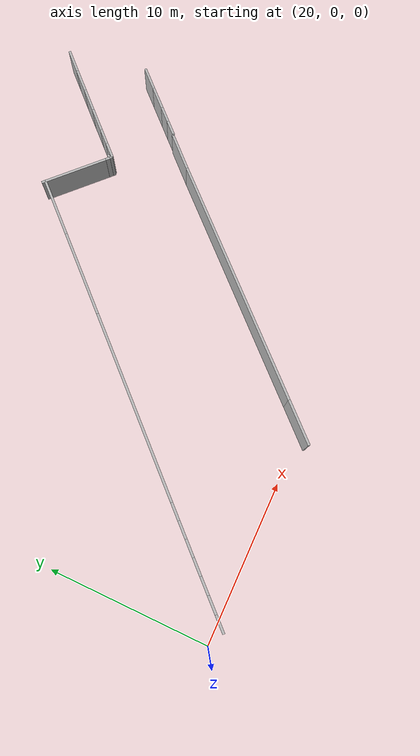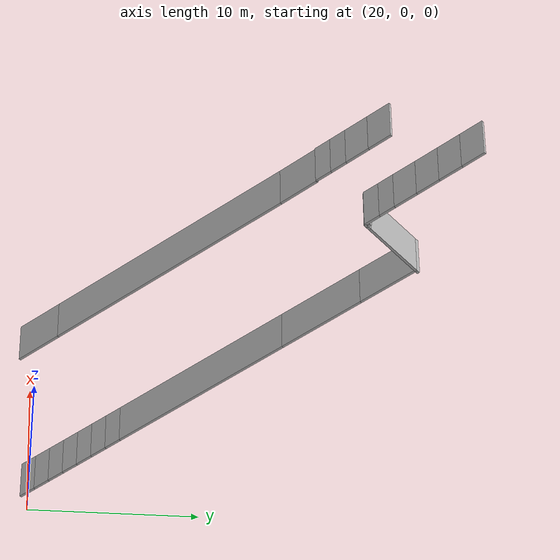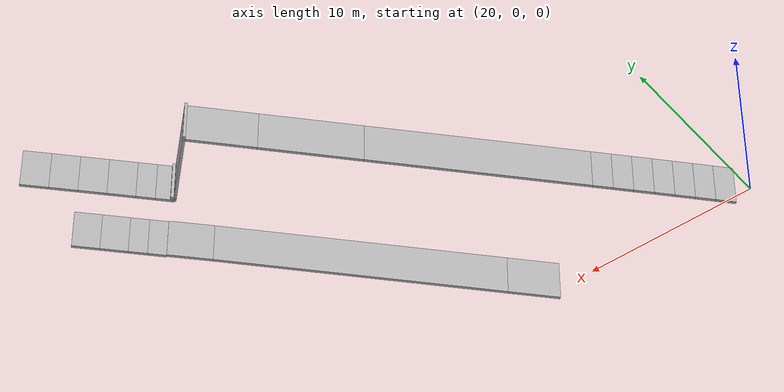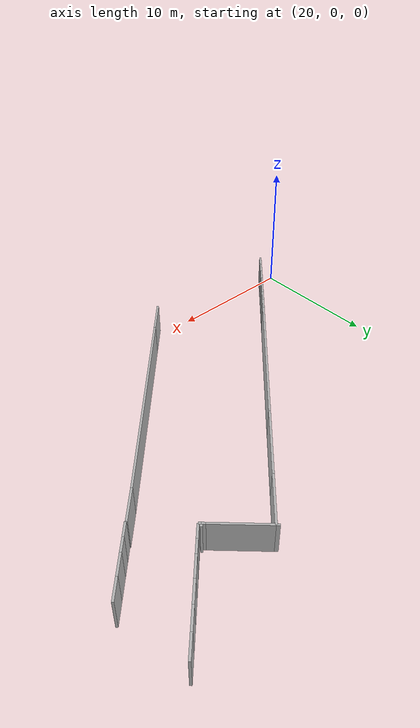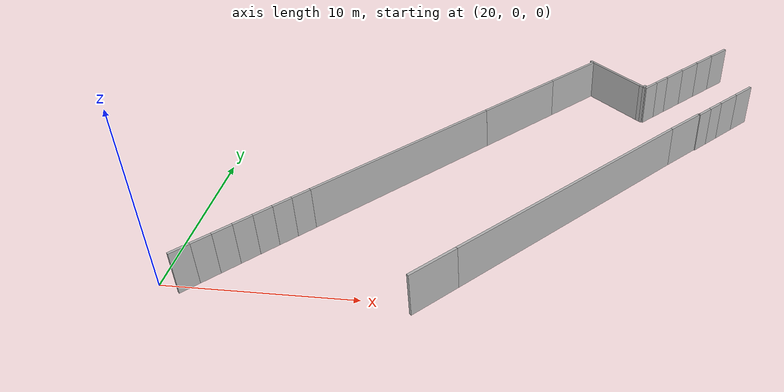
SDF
<?xml version="1.0" ?>
<sdf version="1.6">
  <model name="sps_0941">
    <pose frame="">0 0 0 0 -0 0</pose>
    <static>1</static>
    <self_collide>0</self_collide>
    <allow_auto_disable>0</allow_auto_disable>
    <link name="Wall45">
      <kinematic>0</kinematic>
      <gravity>1</gravity>
      <self_collide>0</self_collide>
      <collision name="collision">
        <geometry>
          <box>
            <size>0.246635 0.15 2.5</size>
          </box>
        </geometry>
        <pose frame="">0 0 0 0 -0 0</pose>
      </collision>
      <visual name="visual">
        <geometry>
          <box>
            <size>0.246635 0.15 2.5</size>
          </box>
        </geometry>
        <pose frame="">0 0 0 0 -0 0</pose>
        <cast_shadows>1</cast_shadows>
        <transparency>0.0</transparency>
      </visual>
      <pose frame="">40.7091 20.7286 1.25 0 0 -0.770349</pose>
    </link>
    <link name="Wall207">
      <kinematic>0</kinematic>
      <gravity>1</gravity>
      <self_collide>0</self_collide>
      <collision name="collision">
        <geometry>
          <box>
            <size>11.9252 0.15 2.5</size>
          </box>
        </geometry>
        <pose frame="">0 0 0 0 -0 0</pose>
      </collision>
      <visual name="visual">
        <geometry>
          <box>
            <size>11.9252 0.15 2.5</size>
          </box>
        </geometry>
        <pose frame="">0 0 0 0 -0 0</pose>
        <cast_shadows>1</cast_shadows>
        <transparency>0.0</transparency>
      </visual>
      <pose frame="">30.3936 9.53354 1.25 0 -0 0.818166</pose>
    </link>
    <link name="Wall208">
      <kinematic>0</kinematic>
      <gravity>1</gravity>
      <self_collide>0</self_collide>
      <collision name="collision">
        <geometry>
          <box>
            <size>5.4905 0.15 2.5</size>
          </box>
        </geometry>
        <pose frame="">0 0 0 0 -0 0</pose>
      </collision>
      <visual name="visual">
        <geometry>
          <box>
            <size>5.4905 0.15 2.5</size>
          </box>
        </geometry>
        <pose frame="">0 0 0 0 -0 0</pose>
        <cast_shadows>1</cast_shadows>
        <transparency>0.0</transparency>
      </visual>
      <pose frame="">36.346 15.8893 1.25 0 -0 0.818166</pose>
    </link>
    <link name="Wall209">
      <kinematic>0</kinematic>
      <gravity>1</gravity>
      <self_collide>0</self_collide>
      <collision name="collision">
        <geometry>
          <box>
            <size>3.76717 0.15 2.5</size>
          </box>
        </geometry>
        <pose frame="">0 0 0 0 -0 0</pose>
      </collision>
      <visual name="visual">
        <geometry>
          <box>
            <size>3.76717 0.15 2.5</size>
          </box>
        </geometry>
        <pose frame="">0 0 0 0 -0 0</pose>
        <cast_shadows>1</cast_shadows>
        <transparency>0.0</transparency>
      </visual>
      <pose frame="">39.5101 19.2679 1.25 0 -0 0.818166</pose>
    </link>
    <link name="Wall217">
      <kinematic>0</kinematic>
      <gravity>1</gravity>
      <self_collide>0</self_collide>
      <collision name="collision">
        <geometry>
          <box>
            <size>0.242788 0.15 2.5</size>
          </box>
        </geometry>
        <pose frame="">0 0 0 0 -0 0</pose>
      </collision>
      <visual name="visual">
        <geometry>
          <box>
            <size>0.242788 0.15 2.5</size>
          </box>
        </geometry>
        <pose frame="">0 0 0 0 -0 0</pose>
        <cast_shadows>1</cast_shadows>
        <transparency>0.0</transparency>
      </visual>
      <pose frame="">43.9666 17.7998 1.25 0 -0 0.876505</pose>
    </link>
    <link name="Wall369">
      <kinematic>0</kinematic>
      <gravity>1</gravity>
      <self_collide>0</self_collide>
      <collision name="collision">
        <geometry>
          <box>
            <size>0.175889 0.15 2.5</size>
          </box>
        </geometry>
        <pose frame="">0 0 0 0 -0 0</pose>
      </collision>
      <visual name="visual">
        <geometry>
          <box>
            <size>0.175889 0.15 2.5</size>
          </box>
        </geometry>
        <pose frame="">0 0 0 0 -0 0</pose>
        <cast_shadows>1</cast_shadows>
        <transparency>0.0</transparency>
      </visual>
      <pose frame="">43.9545 17.6479 1.25 0 0 -0.729178</pose>
    </link>
    <link name="Wall552">
      <kinematic>0</kinematic>
      <gravity>1</gravity>
      <self_collide>0</self_collide>
      <collision name="collision">
        <geometry>
          <box>
            <size>0.0508075 0.15 2.5</size>
          </box>
        </geometry>
        <pose frame="">0 0 0 0 -0 0</pose>
      </collision>
      <visual name="visual">
        <geometry>
          <box>
            <size>0.0508075 0.15 2.5</size>
          </box>
        </geometry>
        <pose frame="">0 0 0 0 -0 0</pose>
        <cast_shadows>1</cast_shadows>
        <transparency>0.0</transparency>
      </visual>
      <pose frame="">47.0051 14.7574 1.25 0 -0 2.25323</pose>
    </link>
    <link name="Wall621">
      <kinematic>0</kinematic>
      <gravity>1</gravity>
      <self_collide>0</self_collide>
      <collision name="collision">
        <geometry>
          <box>
            <size>2.85277 0.15 2.5</size>
          </box>
        </geometry>
        <pose frame="">0 0 0 0 -0 0</pose>
      </collision>
      <visual name="visual">
        <geometry>
          <box>
            <size>2.85277 0.15 2.5</size>
          </box>
        </geometry>
        <pose frame="">0 0 0 0 -0 0</pose>
        <cast_shadows>1</cast_shadows>
        <transparency>0.0</transparency>
      </visual>
      <pose frame="">33.4944 0.40942 1.25 0 -0 0.818179</pose>
    </link>
    <link name="Wall622">
      <kinematic>0</kinematic>
      <gravity>1</gravity>
      <self_collide>0</self_collide>
      <collision name="collision">
        <geometry>
          <box>
            <size>15.8262 0.15 2.5</size>
          </box>
        </geometry>
        <pose frame="">0 0 0 0 -0 0</pose>
      </collision>
      <visual name="visual">
        <geometry>
          <box>
            <size>15.8262 0.15 2.5</size>
          </box>
        </geometry>
        <pose frame="">0 0 0 0 -0 0</pose>
        <cast_shadows>1</cast_shadows>
        <transparency>0.0</transparency>
      </visual>
      <pose frame="">39.8784 7.22632 1.25 0 -0 0.818179</pose>
    </link>
    <link name="Wall623">
      <kinematic>0</kinematic>
      <gravity>1</gravity>
      <self_collide>0</self_collide>
      <collision name="collision">
        <geometry>
          <box>
            <size>2.45889 0.15 2.5</size>
          </box>
        </geometry>
        <pose frame="">0 0 0 0 -0 0</pose>
      </collision>
      <visual name="visual">
        <geometry>
          <box>
            <size>2.45889 0.15 2.5</size>
          </box>
        </geometry>
        <pose frame="">0 0 0 0 -0 0</pose>
        <cast_shadows>1</cast_shadows>
        <transparency>0.0</transparency>
      </visual>
      <pose frame="">46.1382 13.8896 1.25 0 -0 0.806515</pose>
    </link>
    <link name="Wall671">
      <kinematic>0</kinematic>
      <gravity>1</gravity>
      <self_collide>0</self_collide>
      <collision name="collision">
        <geometry>
          <box>
            <size>0.270926 0.15 2.5</size>
          </box>
        </geometry>
        <pose frame="">0 0 0 0 -0 0</pose>
      </collision>
      <visual name="visual">
        <geometry>
          <box>
            <size>0.270926 0.15 2.5</size>
          </box>
        </geometry>
        <pose frame="">0 0 0 0 -0 0</pose>
        <cast_shadows>1</cast_shadows>
        <transparency>0.0</transparency>
      </visual>
      <pose frame="">43.7907 17.7998 1.25 0 -0 2.38191</pose>
    </link>
    <link name="Wall672">
      <kinematic>0</kinematic>
      <gravity>1</gravity>
      <self_collide>0</self_collide>
      <collision name="collision">
        <geometry>
          <box>
            <size>3.99255 0.15 2.5</size>
          </box>
        </geometry>
        <pose frame="">0 0 0 0 -0 0</pose>
      </collision>
      <visual name="visual">
        <geometry>
          <box>
            <size>3.99255 0.15 2.5</size>
          </box>
        </geometry>
        <pose frame="">0 0 0 0 -0 0</pose>
        <cast_shadows>1</cast_shadows>
        <transparency>0.0</transparency>
      </visual>
      <pose frame="">42.245 19.2679 1.25 0 -0 2.38191</pose>
    </link>
    <link name="Wall3373">
      <kinematic>0</kinematic>
      <gravity>1</gravity>
      <self_collide>0</self_collide>
      <collision name="collision">
        <geometry>
          <box>
            <size>1.49648 0.15 2.5</size>
          </box>
        </geometry>
        <pose frame="">0 0 0 0 -0 0</pose>
      </collision>
      <visual name="visual">
        <geometry>
          <box>
            <size>1.49648 0.15 2.5</size>
          </box>
        </geometry>
        <pose frame="">0 0 0 0 -0 0</pose>
        <cast_shadows>1</cast_shadows>
        <transparency>0.0</transparency>
      </visual>
      <pose frame="">49.9777 17.836 1.25 0 0 -2.33439</pose>
    </link>
    <link name="Wall3374">
      <kinematic>0</kinematic>
      <gravity>1</gravity>
      <self_collide>0</self_collide>
      <collision name="collision">
        <geometry>
          <box>
            <size>1.49651 0.15 2.5</size>
          </box>
        </geometry>
        <pose frame="">0 0 0 0 -0 0</pose>
      </collision>
      <visual name="visual">
        <geometry>
          <box>
            <size>1.49651 0.15 2.5</size>
          </box>
        </geometry>
        <pose frame="">0 0 0 0 -0 0</pose>
        <cast_shadows>1</cast_shadows>
        <transparency>0.0</transparency>
      </visual>
      <pose frame="">48.9438 16.754 1.25 0 0 -2.33246</pose>
    </link>
    <link name="Wall3375">
      <kinematic>0</kinematic>
      <gravity>1</gravity>
      <self_collide>0</self_collide>
      <collision name="collision">
        <geometry>
          <box>
            <size>1.01888 0.15 2.5</size>
          </box>
        </geometry>
        <pose frame="">0 0 0 0 -0 0</pose>
      </collision>
      <visual name="visual">
        <geometry>
          <box>
            <size>1.01888 0.15 2.5</size>
          </box>
        </geometry>
        <pose frame="">0 0 0 0 -0 0</pose>
        <cast_shadows>1</cast_shadows>
        <transparency>0.0</transparency>
      </visual>
      <pose frame="">48.0755 15.8442 1.25 0 0 -2.33357</pose>
    </link>
    <link name="Wall3376">
      <kinematic>0</kinematic>
      <gravity>1</gravity>
      <self_collide>0</self_collide>
      <collision name="collision">
        <geometry>
          <box>
            <size>1.01898 0.15 2.5</size>
          </box>
        </geometry>
        <pose frame="">0 0 0 0 -0 0</pose>
      </collision>
      <visual name="visual">
        <geometry>
          <box>
            <size>1.01898 0.15 2.5</size>
          </box>
        </geometry>
        <pose frame="">0 0 0 0 -0 0</pose>
        <cast_shadows>1</cast_shadows>
        <transparency>0.0</transparency>
      </visual>
      <pose frame="">47.3723 15.1068 1.25 0 0 -2.33133</pose>
    </link>
    <link name="Wall3537">
      <kinematic>0</kinematic>
      <gravity>1</gravity>
      <self_collide>0</self_collide>
      <collision name="collision">
        <geometry>
          <box>
            <size>1.08497 0.15 2.5</size>
          </box>
        </geometry>
        <pose frame="">0 0 0 0 -0 0</pose>
      </collision>
      <visual name="visual">
        <geometry>
          <box>
            <size>1.08497 0.15 2.5</size>
          </box>
        </geometry>
        <pose frame="">0 0 0 0 -0 0</pose>
        <cast_shadows>1</cast_shadows>
        <transparency>0.0</transparency>
      </visual>
      <pose frame="">25.947 4.78557 1.25 0 0 -2.32357</pose>
    </link>
    <link name="Wall3538">
      <kinematic>0</kinematic>
      <gravity>1</gravity>
      <self_collide>0</self_collide>
      <collision name="collision">
        <geometry>
          <box>
            <size>1.08475 0.15 2.5</size>
          </box>
        </geometry>
        <pose frame="">0 0 0 0 -0 0</pose>
      </collision>
      <visual name="visual">
        <geometry>
          <box>
            <size>1.08475 0.15 2.5</size>
          </box>
        </geometry>
        <pose frame="">0 0 0 0 -0 0</pose>
        <cast_shadows>1</cast_shadows>
        <transparency>0.0</transparency>
      </visual>
      <pose frame="">25.2056 3.99348 1.25 0 0 -2.32261</pose>
    </link>
    <link name="Wall3539">
      <kinematic>0</kinematic>
      <gravity>1</gravity>
      <self_collide>0</self_collide>
      <collision name="collision">
        <geometry>
          <box>
            <size>1.08479 0.15 2.5</size>
          </box>
        </geometry>
        <pose frame="">0 0 0 0 -0 0</pose>
      </collision>
      <visual name="visual">
        <geometry>
          <box>
            <size>1.08479 0.15 2.5</size>
          </box>
        </geometry>
        <pose frame="">0 0 0 0 -0 0</pose>
        <cast_shadows>1</cast_shadows>
        <transparency>0.0</transparency>
      </visual>
      <pose frame="">24.4652 3.2007 1.25 0 0 -2.3215</pose>
    </link>
    <link name="Wall3540">
      <kinematic>0</kinematic>
      <gravity>1</gravity>
      <self_collide>0</self_collide>
      <collision name="collision">
        <geometry>
          <box>
            <size>1.08566 0.15 2.5</size>
          </box>
        </geometry>
        <pose frame="">0 0 0 0 -0 0</pose>
      </collision>
      <visual name="visual">
        <geometry>
          <box>
            <size>1.08566 0.15 2.5</size>
          </box>
        </geometry>
        <pose frame="">0 0 0 0 -0 0</pose>
        <cast_shadows>1</cast_shadows>
        <transparency>0.0</transparency>
      </visual>
      <pose frame="">23.7255 2.40669 1.25 0 0 -2.32021</pose>
    </link>
    <link name="Wall3541">
      <kinematic>0</kinematic>
      <gravity>1</gravity>
      <self_collide>0</self_collide>
      <collision name="collision">
        <geometry>
          <box>
            <size>1.08574 0.15 2.5</size>
          </box>
        </geometry>
        <pose frame="">0 0 0 0 -0 0</pose>
      </collision>
      <visual name="visual">
        <geometry>
          <box>
            <size>1.08574 0.15 2.5</size>
          </box>
        </geometry>
        <pose frame="">0 0 0 0 -0 0</pose>
        <cast_shadows>1</cast_shadows>
        <transparency>0.0</transparency>
      </visual>
      <pose frame="">22.9863 1.61149 1.25 0 0 -2.31922</pose>
    </link>
    <link name="Wall3542">
      <kinematic>0</kinematic>
      <gravity>1</gravity>
      <self_collide>0</self_collide>
      <collision name="collision">
        <geometry>
          <box>
            <size>1.08574 0.15 2.5</size>
          </box>
        </geometry>
        <pose frame="">0 0 0 0 -0 0</pose>
      </collision>
      <visual name="visual">
        <geometry>
          <box>
            <size>1.08574 0.15 2.5</size>
          </box>
        </geometry>
        <pose frame="">0 0 0 0 -0 0</pose>
        <cast_shadows>1</cast_shadows>
        <transparency>0.0</transparency>
      </visual>
      <pose frame="">22.2479 0.815505 1.25 0 0 -2.31814</pose>
    </link>
    <link name="Wall3543">
      <kinematic>0</kinematic>
      <gravity>1</gravity>
      <self_collide>0</self_collide>
      <collision name="collision">
        <geometry>
          <box>
            <size>1.08572 0.15 2.5</size>
          </box>
        </geometry>
        <pose frame="">0 0 0 0 -0 0</pose>
      </collision>
      <visual name="visual">
        <geometry>
          <box>
            <size>1.08572 0.15 2.5</size>
          </box>
        </geometry>
        <pose frame="">0 0 0 0 -0 0</pose>
        <cast_shadows>1</cast_shadows>
        <transparency>0.0</transparency>
      </visual>
      <pose frame="">21.5105 0.0185994 1.25 0 0 -2.31671</pose>
    </link>
    <link name="Wall5982">
      <kinematic>0</kinematic>
      <gravity>1</gravity>
      <self_collide>0</self_collide>
      <collision name="collision">
        <geometry>
          <box>
            <size>1.503 0.15 2.5</size>
          </box>
        </geometry>
        <pose frame="">0 0 0 0 -0 0</pose>
      </collision>
      <visual name="visual">
        <geometry>
          <box>
            <size>1.503 0.15 2.5</size>
          </box>
        </geometry>
        <pose frame="">0 0 0 0 -0 0</pose>
        <cast_shadows>1</cast_shadows>
        <transparency>0.0</transparency>
      </visual>
      <pose frame="">49.0581 22.856 1.25 0 0 -2.33739</pose>
    </link>
    <link name="Wall5983">
      <kinematic>0</kinematic>
      <gravity>1</gravity>
      <self_collide>0</self_collide>
      <collision name="collision">
        <geometry>
          <box>
            <size>1.50304 0.15 2.5</size>
          </box>
        </geometry>
        <pose frame="">0 0 0 0 -0 0</pose>
      </collision>
      <visual name="visual">
        <geometry>
          <box>
            <size>1.50304 0.15 2.5</size>
          </box>
        </geometry>
        <pose frame="">0 0 0 0 -0 0</pose>
        <cast_shadows>1</cast_shadows>
        <transparency>0.0</transparency>
      </visual>
      <pose frame="">48.0163 21.7726 1.25 0 0 -2.33583</pose>
    </link>
    <link name="Wall5984">
      <kinematic>0</kinematic>
      <gravity>1</gravity>
      <self_collide>0</self_collide>
      <collision name="collision">
        <geometry>
          <box>
            <size>1.50314 0.15 2.5</size>
          </box>
        </geometry>
        <pose frame="">0 0 0 0 -0 0</pose>
      </collision>
      <visual name="visual">
        <geometry>
          <box>
            <size>1.50314 0.15 2.5</size>
          </box>
        </geometry>
        <pose frame="">0 0 0 0 -0 0</pose>
        <cast_shadows>1</cast_shadows>
        <transparency>0.0</transparency>
      </visual>
      <pose frame="">46.9762 20.6875 1.25 0 0 -2.3342</pose>
    </link>
    <link name="Wall5985">
      <kinematic>0</kinematic>
      <gravity>1</gravity>
      <self_collide>0</self_collide>
      <collision name="collision">
        <geometry>
          <box>
            <size>1.50301 0.15 2.5</size>
          </box>
        </geometry>
        <pose frame="">0 0 0 0 -0 0</pose>
      </collision>
      <visual name="visual">
        <geometry>
          <box>
            <size>1.50301 0.15 2.5</size>
          </box>
        </geometry>
        <pose frame="">0 0 0 0 -0 0</pose>
        <cast_shadows>1</cast_shadows>
        <transparency>0.0</transparency>
      </visual>
      <pose frame="">45.9378 19.6008 1.25 0 0 -2.33276</pose>
    </link>
    <link name="Wall5986">
      <kinematic>0</kinematic>
      <gravity>1</gravity>
      <self_collide>0</self_collide>
      <collision name="collision">
        <geometry>
          <box>
            <size>1.01384 0.15 2.5</size>
          </box>
        </geometry>
        <pose frame="">0 0 0 0 -0 0</pose>
      </collision>
      <visual name="visual">
        <geometry>
          <box>
            <size>1.01384 0.15 2.5</size>
          </box>
        </geometry>
        <pose frame="">0 0 0 0 -0 0</pose>
        <cast_shadows>1</cast_shadows>
        <transparency>0.0</transparency>
      </visual>
      <pose frame="">45.0689 18.6905 1.25 0 0 -2.33316</pose>
    </link>
    <link name="Wall5987">
      <kinematic>0</kinematic>
      <gravity>1</gravity>
      <self_collide>0</self_collide>
      <collision name="collision">
        <geometry>
          <box>
            <size>1.01385 0.15 2.5</size>
          </box>
        </geometry>
        <pose frame="">0 0 0 0 -0 0</pose>
      </collision>
      <visual name="visual">
        <geometry>
          <box>
            <size>1.01385 0.15 2.5</size>
          </box>
        </geometry>
        <pose frame="">0 0 0 0 -0 0</pose>
        <cast_shadows>1</cast_shadows>
        <transparency>0.0</transparency>
      </visual>
      <pose frame="">44.3694 17.9566 1.25 0 0 -2.33125</pose>
    </link>
  </model>
</sdf>
